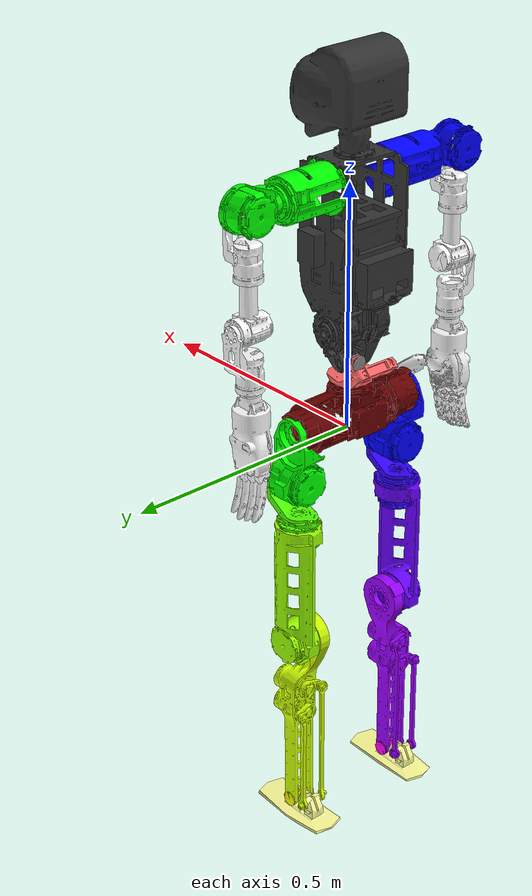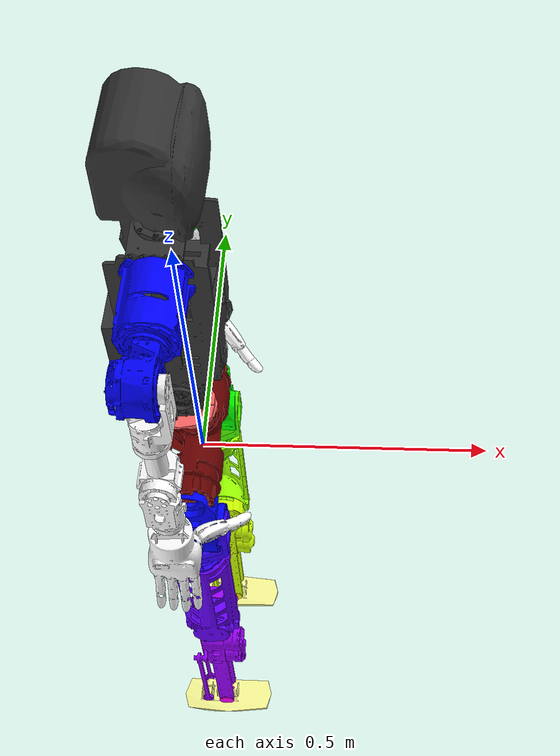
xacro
<?xml version="1.0"?>
<robot xmlns:xacro="http://www.ros.org/wiki/xacro" name="mojia">
    <xacro:arg name="initial_positions_file" default="initial_positions.yaml" />

    <!-- Import mojia urdf file -->
    <xacro:include filename="$(find x1_moveit_urdf)/urdf/mojia.urdf" />

    <!-- Import control_xacro -->
    <xacro:include filename="mojia.ros2_control.xacro" />

    <xacro:mojia_ros2_control name="FakeSystem" initial_positions_file="$(arg initial_positions_file)"/>

</robot>

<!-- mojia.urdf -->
<robot
  name="mojia">
  <!-- base_link -->
  <link
    name="base_link">
    <inertial>
      <origin
        xyz="-0.00411548224198929 0.000146147835290573 0.0426606792874893"
        rpy="0 0 0" />
      <mass
        value="1.10840556681425" />
      <inertia
        ixx="0.00441901229889038"
        ixy="-2.0392538906452E-06"
        ixz="-2.74478451994127E-05"
        iyy="0.00141431871882606"
        iyz="-1.41940549816939E-06"
        izz="0.00368200186094865" />
    </inertial>
    <visual>
      <origin
        xyz="0 0 0"
        rpy="0 0 0" />
      <geometry>
        <mesh
          filename="package://x1_moveit_urdf/meshes2/base_link_simple.STL" />
      </geometry>
      <material name="base_link_material">
        <color rgba="0.4 0 0 1" />
      </material>
    </visual>
    <collision>
      <origin
        xyz="0 0 0"
        rpy="0 0 0" />
      <geometry>
        <mesh
          filename="package://x1_moveit_urdf/meshes2/base_link_simple.STL" />
      </geometry>
    </collision>
  </link>
    <!-- lumbar_yaw -->
  <link
    name="lumbar_yaw">
    <inertial>
      <origin
        xyz="0.0242847587919135 0.000379949106794244 -0.0333488125835713"
        rpy="0 0 0" />
      <mass
        value="0.285605061772906" />
      <inertia
        ixx="0.000292548153065141"
        ixy="3.75674006613175E-07"
        ixz="4.24435646495604E-05"
        iyy="0.000267304646340175"
        iyz="6.64362629008402E-07"
        izz="0.000485961878526842" />
    </inertial>
    <visual>
      <origin
        xyz="0 0 0"
        rpy="0 0 0" />
      <geometry>
        <mesh
          filename="package://x1_moveit_urdf/meshes2/lumbar_yaw_simple.STL" />
      </geometry>
      <material name="lumbar_yaw_material">
        <color rgba="1 0.4 0.4 1" />
      </material>
    </visual>
    <collision>
      <origin
        xyz="0 0 0"
        rpy="0 0 0" />
      <geometry>
        <mesh
          filename="package://x1_moveit_urdf/meshes2/lumbar_yaw_simple.STL" />
      </geometry>
    </collision>
  </link>
  <!-- lumbar_yaw_joint -->
  <joint
    name="lumbar_yaw_joint"
    type="fixed">
    <origin
      xyz="-0.00892499999999956 0 0.0945"
      rpy="3.14159265358979 0 -3.14159265358978" />
    <parent
      link="base_link" />
    <child
      link="lumbar_yaw" />
    <axis
      xyz="0 0 -1" />
    <limit
      lower="-3.14"
      upper="3.14"
      effort="80"
      velocity="8" />
  </joint>
  <!-- lumbar_roll -->
  <link
    name="lumbar_roll">
    <inertial>
      <origin
        xyz="1.0432775894919E-14 5.07141613037554E-07 1.14154701148485E-13"
        rpy="0 0 0" />
      <mass
        value="0.0849490652980181" />
      <inertia
        ixx="6.8736749754492E-06"
        ixy="1.23726626464703E-20"
        ixz="-5.60189897559463E-08"
        iyy="1.42989849183807E-05"
        iyz="-2.32048040088288E-21"
        izz="1.045284785918E-05" />
    </inertial>
    <visual>
      <origin
        xyz="0 0 0"
        rpy="0 0 0" />
      <geometry>
        <mesh
          filename="package://x1_moveit_urdf/meshes2/lumbar_roll_simple.STL" />
      </geometry>
      <material
        name="lumbar_roll_material" >
        <color
          rgba="0.5 0.5 0.5 1.0" />
      </material>
    </visual>
    <collision>
      <origin
        xyz="0 0 0"
        rpy="0 0 0" />
      <geometry>
        <mesh
          filename="package://x1_moveit_urdf/meshes2/lumbar_roll_simple.STL" />
      </geometry>
    </collision>
  </link>
  <!-- lumbar_roll_joint -->
  <joint
    name="lumbar_roll_joint"
    type="fixed">
    <origin
      xyz="0 0 -0.0522"
      rpy="-1.5707963267949 0 1.57079632679492" />
    <parent
      link="lumbar_yaw" />
    <child
      link="lumbar_roll" />
    <axis
      xyz="0 0 -1" />
    <limit
      lower="-0.3"
      upper="0.3"
      effort="100"
      velocity="8" />
  </joint>
  <!-- lumbar_pitch -->
  <link
    name="lumbar_pitch">
    <inertial>
      <origin
        xyz="0.00631921618230846 0.264879323783239 0.00438445218382418"
        rpy="0 0 0" />
      <mass
        value="5.86662042170012" />
      <inertia
        ixx="0.0151704590846097"
        ixy="-0.000161997288556364"
        ixz="-2.32038766630112E-06"
        iyy="0.0137892848345163"
        iyz="1.11852172902789E-06"
        izz="0.0171651320818005" />
    </inertial>
    <visual>
      <origin
        xyz="0 0 0"
        rpy="0 0 0" />
      <geometry>
        <mesh
          filename="package://x1_moveit_urdf/meshes2/lumbar_pitch_simple.STL" />
      </geometry>
      <material
        name="lumbar_pitch_material">
        <color
          rgba="0.2 0.2 0.2 1" />
      </material>
    </visual>
    <collision>
      <origin
        xyz="0 0 0"
        rpy="0 0 0" />
      <geometry>
        <mesh
          filename="package://x1_moveit_urdf/meshes2/lumbar_pitch_simple.STL" />
      </geometry>
    </collision>
  </link>
  <!-- lumbar_pitch_joint -->
  <joint
    name="lumbar_pitch_joint"
    type="fixed">
    <origin
      xyz="0 0 0"
      rpy="0 1.55515005729251 0" />
    <parent
      link="lumbar_roll" />
    <child
      link="lumbar_pitch" />
    <axis
      xyz="0 0 1" />
    <limit
      lower="-0.3"
      upper="0.3"
      effort="100"
      velocity="8" />
  </joint>
    <!-- left_shoulder_pitch -->
  <link
    name="left_shoulder_pitch">
    <inertial>
      <origin
        xyz="-0.00332649335251115 -0.00110354880310753 0.0290235767327294"
        rpy="0 0 0" />
      <mass
        value="0.542699404176845" />
      <inertia
        ixx="0.000722529170897043"
        ixy="-5.54896068666339E-07"
        ixz="-1.91191464876378E-05"
        iyy="0.00101667275817213"
        iyz="-1.49494605897863E-05"
        izz="0.000552736902750732" />
    </inertial>
    <visual>
      <origin
        xyz="0 0 0"
        rpy="0 0 0" />
      <geometry>
        <mesh
          filename="package://x1_moveit_urdf/meshes2/left_shoulder_pitch_simple.STL" />
      </geometry>
      <material
        name="left_shoulder_pitch_material">
        <color
          rgba="0 1 0 1" />
      </material>
    </visual>
    <collision>
      <origin
        xyz="0 0 0"
        rpy="0 0 0" />
      <geometry>
        <mesh
          filename="package://x1_moveit_urdf/meshes2/left_shoulder_pitch_simple.STL" />
      </geometry>
    </collision>
  </link>
  <!-- left_shoulder_pitch_joint -->
  <joint
    name="left_shoulder_pitch_joint"
    type="revolute">
    <origin
      xyz="0.00684066494661035 0.365998640806869 0.181174671123289"
      rpy="3.14159265358979 0.031292539004771 0" />
    <parent
      link="lumbar_pitch" />
    <child
      link="left_shoulder_pitch" />
    <axis
      xyz="0 0 -1" />
    <limit
      lower="-3.14"
      upper="3.14"
      effort="80"
      velocity="8" />
  </joint>
  <!-- left_shoulder_roll -->
  <link
    name="left_shoulder_roll">
    <inertial>
      <origin
        xyz="-8.25364178028698E-05 0.0530767872535207 0.00723170713850169"
        rpy="0 0 0" />
      <mass
        value="0.177262967285343" />
      <inertia
        ixx="0.000150561257813197"
        ixy="-1.57480740107331E-07"
        ixz="-5.3233372935276E-07"
        iyy="6.49151390070414E-05"
        iyz="1.54045787231362E-05"
        izz="0.000184234580216881" />
    </inertial>
    <visual>
      <origin
        xyz="0 0 0"
        rpy="0 0 0" />
      <geometry>
        <mesh
          filename="package://x1_moveit_urdf/meshes2/left_shoulder_roll_simple.STL" />
      </geometry>
      <material
        name="">
        <color
          rgba="1 1 1 1" />
      </material>
    </visual>
    <collision>
      <origin
        xyz="0 0 0"
        rpy="0 0 0" />
      <geometry>
        <mesh
          filename="package://x1_moveit_urdf/meshes2/left_shoulder_roll_simple.STL" />
      </geometry>
    </collision>
  </link>
  <!-- left_shoulder_roll_joint -->
  <joint
    name="left_shoulder_roll_joint"
    type="revolute">
    <origin
      xyz="-0.0169999133123217 -5.42897189597658E-05 -0.0733999999999981"
      rpy="0 -1.55515005729249 0" />
    <parent
      link="left_shoulder_pitch" />
    <child
      link="left_shoulder_roll" />
    <axis
      xyz="0 0 -1" />
    <limit
      lower="-3.14"
      upper="0"
      effort="80"
      velocity="8" />
  </joint>
  <!-- left_shoulder_yaw -->
  <link
    name="left_shoulder_yaw">
    <inertial>
      <origin
        xyz="0.000149139608111414 -0.00264803136489561 -0.0651418602655361"
        rpy="0 0 0" />
      <mass
        value="0.194803017588638" />
      <inertia
        ixx="0.000135198542790347"
        ixy="-6.61852095338855E-08"
        ixz="5.10717801509479E-07"
        iyy="0.000166335353414696"
        iyz="6.51047641164555E-06"
        izz="6.6471862655499E-05" />
    </inertial>
    <visual>
      <origin
        xyz="0 0 0"
        rpy="0 0 0" />
      <geometry>
        <mesh
          filename="package://x1_moveit_urdf/meshes2/left_shoulder_yaw_simple.STL" />
      </geometry>
      <material
        name="">
        <color
          rgba="1 1 1 1" />
      </material>
    </visual>
    <collision>
      <origin
        xyz="0 0 0"
        rpy="0 0 0" />
      <geometry>
        <mesh
          filename="package://x1_moveit_urdf/meshes2/left_shoulder_yaw_simple.STL" />
      </geometry>
    </collision>
  </link>
  <!-- left_shoulder_yaw_joint -->
  <joint
    name="left_shoulder_yaw_joint"
    type="revolute">
    <origin
      xyz="0.000579714734117776 0.125254090204787 -0.0166930578416904"
      rpy="1.82673878068826 1.5582045043871 0.256324151940751" />
    <parent
      link="left_shoulder_roll" />
    <child
      link="left_shoulder_yaw" />
    <axis
      xyz="0 0 1" />
    <limit
      lower="-3.14"
      upper="3.14"
      effort="80"
      velocity="8" />
  </joint>
  <!-- left_elbow_pitch -->
  <link
    name="left_elbow_pitch">
    <inertial>
      <origin
        xyz="-0.000273876102835502 0.0583033973975012 0.00453621119175379"
        rpy="0 0 0" />
      <mass
        value="0.143808611229734" />
      <inertia
        ixx="0.000122979516243816"
        ixy="-1.55890139227625E-06"
        ixz="-5.36818906720583E-07"
        iyy="5.35513055114415E-05"
        iyz="-1.70454399759809E-05"
        izz="0.000140691828936738" />
    </inertial>
    <visual>
      <origin
        xyz="0 0 0"
        rpy="0 0 0" />
      <geometry>
        <mesh
          filename="package://x1_moveit_urdf/meshes2/left_elbow_pitch_simple.STL" />
      </geometry>
      <material
        name="">
        <color
          rgba="1 1 1 1" />
      </material>
    </visual>
    <collision>
      <origin
        xyz="0 0 0"
        rpy="0 0 0" />
      <geometry>
        <mesh
          filename="package://x1_moveit_urdf/meshes2/left_elbow_pitch_simple.STL" />
      </geometry>
    </collision>
  </link>
  <!-- left_elbow_pitch_joint -->
  <joint
    name="left_elbow_pitch_joint"
    type="revolute">
    <origin
      xyz="0.00163986046518474 -0.0313569443085182 -0.096499999999999"
      rpy="-1.5707963267949 -0.00319351850506053 0.00346578280149134" />
    <parent
      link="left_shoulder_yaw" />
    <child
      link="left_elbow_pitch" />
    <axis
      xyz="0 0 1" />
    <limit
      lower="0"
      upper="1.7"
      effort="80"
      velocity="8" />
  </joint>
  <!-- left_elbow_yaw -->
  <link
    name="left_elbow_yaw">
    <inertial>
      <origin
        xyz="0.000199094560296431 -0.000302870223542744 -0.0136355891234377"
        rpy="0 0 0" />
      <mass
        value="0.0612077984858201" />
      <inertia
        ixx="1.05700158378458E-05"
        ixy="-1.4621144225104E-07"
        ixz="-1.50686031125134E-11"
        iyy="8.35342507539468E-06"
        iyz="-2.09223764956818E-11"
        izz="1.19406807189465E-05" />
    </inertial>
    <visual>
      <origin
        xyz="0 0 0"
        rpy="0 0 0" />
      <geometry>
        <mesh
          filename="package://x1_moveit_urdf/meshes2/left_elbow_yaw_simple.STL" />
      </geometry>
      <material
        name="">
        <color
          rgba="1 1 1 1" />
      </material>
    </visual>
    <collision>
      <origin
        xyz="0 0 0"
        rpy="0 0 0" />
      <geometry>
        <mesh
          filename="package://x1_moveit_urdf/meshes2/left_elbow_yaw_simple.STL" />
      </geometry>
    </collision>
  </link>
  <!-- left_elbow_yaw_joint -->
  <joint
    name="left_elbow_yaw_joint"
    type="revolute">
    <origin
      xyz="0.0007880461527357 0.116972521845495 0.0308056475131634"
      rpy="1.57079632678494 -1.55514499556442 -0.022438290275157" />
    <parent
      link="left_elbow_pitch" />
    <child
      link="left_elbow_yaw" />
    <axis
      xyz="0 0 1" />
    <limit
      lower="-3.14"
      upper="3.14"
      effort="80"
      velocity="8" />
  </joint>
    <!-- right_shoulder_pitch -->
  <link
    name="right_shoulder_pitch">
    <inertial>
      <origin
        xyz="0.00341359621287992 -0.000986341160443271 0.0291359382301364"
        rpy="0 0 0" />
      <mass
        value="0.541164807985143" />
      <inertia
        ixx="0.000722519077405953"
        ixy="1.32379537779855E-06"
        ixz="1.91138067798437E-05"
        iyy="0.00101665284015591"
        iyz="-1.68000287858978E-05"
        izz="0.000552732129965598" />
    </inertial>
    <visual>
      <origin
        xyz="0 0 0"
        rpy="0 0 0" />
      <geometry>
        <mesh
          filename="package://x1_moveit_urdf/meshes2/right_shoulder_pitch_simple.STL" />
      </geometry>
      <material
        name="right_shoulder_pitch_material">
        <color
          rgba="0 0 1 1" />
      </material>
    </visual>
    <collision>
      <origin
        xyz="0 0 0"
        rpy="0 0 0" />
      <geometry>
        <mesh
          filename="package://x1_moveit_urdf/meshes2/right_shoulder_pitch_simple.STL" />
      </geometry>
    </collision>
  </link>
  <!-- right_shoulder_pitch_joint -->
  <joint
    name="right_shoulder_pitch_joint"
    type="revolute">
    <origin
      xyz="0.00116882571392232 0.365998640806869 -0.181299999999985"
      rpy="0 0 3.14159265358979" />
    <parent
      link="lumbar_pitch" />
    <child
      link="right_shoulder_pitch" />
    <axis
      xyz="0 0 1" />
    <limit
      lower="-3.14"
      upper="3.14"
      effort="80"
      velocity="8" />
  </joint>
  <!-- right_shoulder_roll -->
  <link
    name="right_shoulder_roll">
    <inertial>
      <origin
        xyz="-1.86494505473034E-05 -0.0530995950476543 0.00706257503619361"
        rpy="0 0 0" />
      <mass
        value="0.177262967616402" />
      <inertia
        ixx="0.000150552920976246"
        ixy="2.34557176353238E-08"
        ixz="-5.52349341421497E-09"
        iyy="6.5014673405522E-05"
        iyz="-1.57859159242346E-05"
        izz="0.000184143383830389" />
    </inertial>
    <visual>
      <origin
        xyz="0 0 0"
        rpy="0 0 0" />
      <geometry>
        <mesh
          filename="package://x1_moveit_urdf/meshes2/right_shoulder_roll_simple.STL" />
      </geometry>
      <material
        name="">
        <color
          rgba="1 1 1 1" />
      </material>
    </visual>
    <collision>
      <origin
        xyz="0 0 0"
        rpy="0 0 0" />
      <geometry>
        <mesh
          filename="package://x1_moveit_urdf/meshes2/right_shoulder_roll_simple.STL" />
      </geometry>
    </collision>
  </link>
  <!-- right_shoulder_roll_joint -->
  <joint
    name="right_shoulder_roll_joint"
    type="revolute">
    <origin
      xyz="0.0169999133123207 -5.42897189588776E-05 -0.0733999999999984"
      rpy="-0.234226861435469 -1.57079630572147 -2.91064514152232" />
    <parent
      link="right_shoulder_pitch" />
    <child
      link="right_shoulder_roll" />
    <axis
      xyz="0 0 1" />
    <limit
      lower="-3.14"
      upper="0"
      effort="80"
      velocity="8" />
  </joint>
  <!-- right_shoulder_yaw -->
  <link
    name="right_shoulder_yaw">
    <inertial>
      <origin
        xyz="-0.00174842851611806 0.000333054815321896 0.0651418600731424"
        rpy="0 0 0" />
      <mass
        value="0.19480301770664" />
      <inertia
        ixx="0.000165972455416268"
        ixy="-3.34246474543428E-06"
        ixz="-6.92073368503519E-06"
        iyy="0.000135561436521552"
        iyz="2.24532271362631E-07"
        izz="6.64718608216598E-05" />
    </inertial>
    <visual>
      <origin
        xyz="0 0 0"
        rpy="0 0 0" />
      <geometry>
        <mesh
          filename="package://x1_moveit_urdf/meshes2/right_shoulder_yaw_simple.STL" />
      </geometry>
      <material
        name="">
        <color
          rgba="1 1 1 1" />
      </material>
    </visual>
    <collision>
      <origin
        xyz="0 0 0"
        rpy="0 0 0" />
      <geometry>
        <mesh
          filename="package://x1_moveit_urdf/meshes2/right_shoulder_yaw_simple.STL" />
      </geometry>
    </collision>
  </link>
  <!-- right_shoulder_yaw_joint -->
  <joint
    name="right_shoulder_yaw_joint"
    type="revolute">
    <origin
      xyz="-4.39689994110593E-05 -0.125199992279295 -0.0170999999999989"
      rpy="1.5707963267949 -0.109529170147002 -0.000351190097847177" />
    <parent
      link="right_shoulder_roll" />
    <child
      link="right_shoulder_yaw" />
    <axis
      xyz="0 0 1" />
    <limit
      lower="-3.14"
      upper="3.14"
      effort="80"
      velocity="8" />
  </joint>
  <!-- right_elbow_pitch -->
  <link
    name="right_elbow_pitch">
    <inertial>
      <origin
        xyz="0.00130853072632608 -0.0583071351001719 0.00456877405751716"
        rpy="0 0 0" />
      <mass
        value="0.143808617756103" />
      <inertia
        ixx="0.000122979526170695"
        ixy="1.55889015489514E-06"
        ixz="-5.3677454927956E-07"
        iyy="5.35513063953965E-05"
        iyz="1.70454411337504E-05"
        izz="0.000140691839527152" />
    </inertial>
    <visual>
      <origin
        xyz="0 0 0"
        rpy="0 0 0" />
      <geometry>
        <mesh
          filename="package://x1_moveit_urdf/meshes2/right_elbow_pitch_simple.STL" />
      </geometry>
      <material
        name="">
        <color
          rgba="1 1 1 1" />
      </material>
    </visual>
    <collision>
      <origin
        xyz="0 0 0"
        rpy="0 0 0" />
      <geometry>
        <mesh
          filename="package://x1_moveit_urdf/meshes2/right_elbow_pitch_simple.STL" />
      </geometry>
    </collision>
  </link>
  <!-- right_elbow_pitch_joint -->
  <joint
    name="right_elbow_pitch_joint"
    type="revolute">
    <origin
      xyz="-0.0308142379152539 0.00338861943897752 0.0964999999999989"
      rpy="-1.5707963267949 0.00319351850506053 -1.68032549694189" />
    <parent
      link="right_shoulder_yaw" />
    <child
      link="right_elbow_pitch" />
    <axis
      xyz="0 0 -1" />
    <limit
      lower="0"
      upper="1.7"
      effort="80"
      velocity="8" />
  </joint>
  <!-- right_elbow_yaw -->
  <link
    name="right_elbow_yaw">
    <inertial>
      <origin
        xyz="-1.92816910771221E-08 -1.64460819754297E-08 -0.013635590017065"
        rpy="0 0 0" />
      <mass
        value="0.0612078028237884" />
      <inertia
        ixx="1.05700177312347E-05"
        ixy="1.46204619903361E-07"
        ixz="-1.27083552627504E-11"
        iyy="8.35342478537872E-06"
        iyz="-1.53169897306542E-11"
        izz="1.19406809591988E-05" />
    </inertial>
    <visual>
      <origin
        xyz="0 0 0"
        rpy="0 0 0" />
      <geometry>
        <mesh
          filename="package://x1_moveit_urdf/meshes2/right_elbow_yaw_simple.STL" />
      </geometry>
      <material
        name="">
        <color
          rgba="1 1 1 1" />
      </material>
    </visual>
    <collision>
      <origin
        xyz="0 0 0"
        rpy="0 0 0" />
      <geometry>
        <mesh
          filename="package://x1_moveit_urdf/meshes2/right_elbow_yaw_simple.STL" />
      </geometry>
    </collision>
  </link>
  <!-- right_elbow_yaw_joint -->
  <joint
    name="right_elbow_yaw_joint"
    type="revolute">
    <origin
      xyz="0.00262505967428117 -0.116970547838755 0.0310000000000156"
      rpy="-1.57079632678494 -1.55514499556442 0.0224382902751568" />
    <parent
      link="right_elbow_pitch" />
    <child
      link="right_elbow_yaw" />
    <axis
      xyz="0 0 -1" />
    <limit
      lower="-3.14"
      upper="3.14"
      effort="80"
      velocity="8" />
  </joint>
  <!-- left_hip_pitch -->
  <link
    name="left_hip_pitch">
    <inertial>
      <origin
        xyz="-0.0768353855661542 -0.00509349646830231 0.00477908123851142"
        rpy="0 0 0" />
      <mass
        value="0.499137053804163" />
      <inertia
        ixx="0.000470159834795421"
        ixy="-7.67218816291647E-07"
        ixz="6.34831225495408E-05"
        iyy="0.00075943013272318"
        iyz="1.50572596404635E-07"
        izz="0.000627349919131527" />
    </inertial>
    <visual>
      <origin
        xyz="0 0 0"
        rpy="0 0 0" />
      <geometry>
        <mesh
          filename="package://x1_moveit_urdf/meshes2/left_hip_pitch_simple.STL" />
      </geometry>
      <material
        name="left_hip_pitch_material">
        <color
          rgba="0 1 0 1" />
      </material>
    </visual>
    <collision>
      <origin
        xyz="0 0 0"
        rpy="0 0 0" />
      <geometry>
        <mesh
          filename="package://x1_moveit_urdf/meshes2/left_hip_pitch_simple.STL" />
      </geometry>
    </collision>
  </link>
  <!-- left_hip_pitch_joint -->
  <joint
    name="left_hip_pitch_joint"
    type="fixed">
    <origin
      xyz="-0.00892499999999997 0.1366 0.0370000000000009"
      rpy="1.5707963267949 -1.5707963267949 0" />
    <parent
      link="base_link" />
    <child
      link="left_hip_pitch" />
    <axis
      xyz="0 0 1" />
    <limit
      lower="-3.14"
      upper="3.14"
      effort="150"
      velocity="8" />
  </joint>
  <!-- left_hip_roll -->
  <link
    name="left_hip_roll">
    <inertial>
      <origin
        xyz="0.000302607426308971 -0.0611150281238166 -0.0135350215072093"
        rpy="0 0 0" />
      <mass
        value="0.244995882241488" />
      <inertia
        ixx="0.000288446946271372"
        ixy="-3.94306076373627E-10"
        ixz="-1.63239145296905E-07"
        iyy="0.000203132884371558"
        iyz="-8.13199094994196E-05"
        izz="0.000260839810139012" />
    </inertial>
    <visual>
      <origin
        xyz="0 0 0"
        rpy="0 0 0" />
      <geometry>
        <mesh
          filename="package://x1_moveit_urdf/meshes2/left_hip_roll_simple.STL" />
      </geometry>
      <material
        name="left_hip_roll_material">
        <color
          rgba="0.3 1 0 1" />
      </material>
    </visual>
    <collision>
      <origin
        xyz="0 0 0"
        rpy="0 0 0" />
      <geometry>
        <mesh
          filename="package://x1_moveit_urdf/meshes2/left_hip_roll_simple.STL" />
      </geometry>
    </collision>
  </link>
  <!-- left_hip_roll_joint -->
  <joint
    name="left_hip_roll_joint"
    type="fixed">
    <origin
      xyz="-0.106902043422618 -0.0376294513921441 0.00625000000000259"
      rpy="1.5707963267949 1.5707963267949 0" />
    <parent
      link="left_hip_pitch" />
    <child
      link="left_hip_roll" />
    <axis
      xyz="0 0 -1" />
    <limit
      lower="-2.3"
      upper="0.8"
      effort="150"
      velocity="8" />
  </joint>
  <!-- left_hip_yaw -->
  <link
    name="left_hip_yaw">
    <inertial>
      <origin
        xyz="0.00998955793786788 0.000163319481209022 0.125854635023332"
        rpy="0 0 0" />
      <mass
        value="0.650294976239883" />
      <inertia
        ixx="0.00451228884717276"
        ixy="-2.80689031477291E-08"
        ixz="0.000127212368924329"
        iyy="0.00387304139500323"
        iyz="-4.60618890673578E-09"
        izz="0.000888216455121223" />
    </inertial>
    <visual>
      <origin
        xyz="0 0 0"
        rpy="0 0 0" />
      <geometry>
        <mesh
          filename="package://x1_moveit_urdf/meshes2/left_hip_yaw_simple.STL" />
      </geometry>
      <material
        name="left_hip_yaw_material">
        <color
          rgba="0.6 1 0 1" />
      </material>
    </visual>
    <collision>
      <origin
        xyz="0 0 0"
        rpy="0 0 0" />
      <geometry>
        <mesh
          filename="package://x1_moveit_urdf/meshes2/left_hip_yaw_simple.STL" />
      </geometry>
    </collision>
  </link>
  <!-- left_hip_yaw_joint -->
  <joint
    name="left_hip_yaw_joint"
    type="fixed">
    <origin
      xyz="0 -0.130201409923332 -0.0367599239353459"
      rpy="1.56818343700026 0 0" />
    <parent
      link="left_hip_roll" />
    <child
      link="left_hip_yaw" />
    <axis
      xyz="0 0 -1" />
    <limit
      lower="-3.14"
      upper="3.14"
      effort="50"
      velocity="24" />
  </joint>
  <!-- left_knee_pitch -->
  <link
    name="left_knee_pitch">
    <inertial>
      <origin
        xyz="0.0114537842909162 -0.184145220288645 0.0234060443728987"
        rpy="0 0 0" />
      <mass
        value="1.05784720547283" />
      <inertia
        ixx="0.0113485834531835"
        ixy="4.115770741638E-05"
        ixz="7.86723536105806E-06"
        iyy="0.000518068119921075"
        iyz="0.000981300531059996"
        izz="0.0111404498442601" />
    </inertial>
    <visual>
      <origin
        xyz="0 0 0"
        rpy="0 0 0" />
      <geometry>
        <mesh
          filename="package://x1_moveit_urdf/meshes2/left_knee_pitch_simple.STL" />
      </geometry>
      <material
        name="left_knee_pitch_material">
        <color
          rgba="0.8 1 0 1" />
      </material>
    </visual>
    <collision>
      <origin
        xyz="0 0 0"
        rpy="0 0 0" />
      <geometry>
        <mesh
          filename="package://x1_moveit_urdf/meshes2/left_knee_pitch_simple.STL" />
      </geometry>
    </collision>
  </link>
  <!-- left_knee_pitch_joint -->
  <joint
    name="left_knee_pitch_joint"
    type="fixed">
    <origin
      xyz="-0.0301999999999961 0 0.225799999999773"
      rpy="-1.5707963267949 0.00261288979463162 -1.57079632679624" />
    <parent
      link="left_hip_yaw" />
    <child
      link="left_knee_pitch" />
    <axis
      xyz="0 0 1" />
    <limit
      lower="0.0"
      upper="1.8"
      effort="150"
      velocity="8" />
  </joint>
  <!-- left_ankle_pitch -->
  <link
    name="left_ankle_pitch">
    <inertial>
      <origin
        xyz="-8.84427080183325E-15 9.32587340685131E-15 -7.41073868937292E-15"
        rpy="0 0 0" />
      <mass
        value="0.0849490652980182" />
      <inertia
        ixx="9.9634051635566E-06"
        ixy="-5.80894148829404E-08"
        ixz="-1.45166121763947E-21"
        iyy="1.42982066187501E-05"
        iyz="-4.17714819225745E-21"
        izz="7.36389597070316E-06" />
    </inertial>
    <visual>
      <origin
        xyz="0 0 0"
        rpy="0 0 0" />
      <geometry>
        <mesh
          filename="package://x1_moveit_urdf/meshes2/left_ankle_pitch_simple.STL" />
      </geometry>
      <material
        name="left_ankle_pitch_material">
        <color
          rgba="1 1 0 1" />
      </material>
    </visual>
    <collision>
      <origin
        xyz="0 0 0"
        rpy="0 0 0" />
      <geometry>
        <mesh
          filename="package://x1_moveit_urdf/meshes2/left_ankle_pitch_simple.STL" />
      </geometry>
    </collision>
  </link>
  <!-- left_ankle_pitch_joint -->
  <joint
    name="left_ankle_pitch_joint"
    type="fixed">
    <origin
      xyz="0 -0.385000000000005 0.0300999999999915"
      rpy="3.14159265358979 0 -3.14159265358979" />
    <parent
      link="left_knee_pitch" />
    <child
      link="left_ankle_pitch" />
    <axis
      xyz="0 0 -1" />
    <limit
      lower="-0.45"
      upper="0.53"
      effort="80"
      velocity="10" />
  </joint>
  <!-- left_ankle_roll -->
  <link
    name="left_ankle_roll">
    <inertial>
      <origin
        xyz="0.00103384742139478 -0.0243320483988078 -0.00578115568426951"
        rpy="0 0 0" />
      <mass
        value="0.320872234018552" />
      <inertia
        ixx="0.00059815844106272"
        ixy="-6.17694002252597E-07"
        ixz="-3.42614597752537E-07"
        iyy="0.000659551190538004"
        iyz="-0.000109468786305328"
        izz="0.000136929660183721" />
    </inertial>
    <visual>
      <origin
        xyz="0 0 0"
        rpy="0 0 0" />
      <geometry>
        <mesh
          filename="package://x1_moveit_urdf/meshes2/left_ankle_roll_simple.STL" />
      </geometry>
      <material
        name="left_ankle_roll_material">
        <color
          rgba="1 1 0.6 1" />
      </material>
    </visual>
    <collision>
      <origin
        xyz="0 0 0"
        rpy="0 0 0" />
      <geometry>
        <mesh
          filename="package://x1_moveit_urdf/meshes2/left_ankle_roll_simple.STL" />
      </geometry>
    </collision>
  </link>
  <!-- left_ankle_roll_joint -->
  <joint
    name="left_ankle_roll_joint"
    type="fixed">
    <origin
      xyz="0 0 0"
      rpy="0.186565506447449 1.5707963267949 0" />
    <parent
      link="left_ankle_pitch" />
    <child
      link="left_ankle_roll" />
    <axis
      xyz="0 0 1" />
    <limit
      lower="-0.35"
      upper="0.35"
      effort="80"
      velocity="10" />
  </joint>
  <!-- right_hip_pitch -->
  <link
    name="right_hip_pitch">
    <inertial>
      <origin
        xyz="0.0768366458793737 0.00507070394553279 -0.00402980267174513"
        rpy="0 0 0" />
      <mass
        value="0.499137066244464" />
      <inertia
        ixx="0.00047013850002577"
        ixy="-7.56987007842232E-07"
        ixz="6.34716406414524E-05"
        iyy="0.000759430235919837"
        iyz="1.60339075938364E-07"
        izz="0.000627371250338339" />
    </inertial>
    <visual>
      <origin
        xyz="0 0 0"
        rpy="0 0 0" />
      <geometry>
        <mesh
          filename="package://x1_moveit_urdf/meshes2/right_hip_pitch_simple.STL" />
      </geometry>
      <material
        name="right_hip_pitch_material">
        <color
          rgba="0 0 1 1" />
      </material>
    </visual>
    <collision>
      <origin
        xyz="0 0 0"
        rpy="0 0 0" />
      <geometry>
        <mesh
          filename="package://x1_moveit_urdf/meshes2/right_hip_pitch_simple.STL" />
      </geometry>
    </collision>
  </link>
  <!-- right_hip_pitch_joint -->
  <joint
    name="right_hip_pitch_joint"
    type="fixed">
    <origin
      xyz="-0.00892499999999973 -0.13585 0.0369999999999999"
      rpy="1.5707963267949 1.5707963267949 0" />
    <parent
      link="base_link" />
    <child
      link="right_hip_pitch" />
    <axis
      xyz="0 0 -1" />
    <limit
      lower="-3.14"
      upper="3.14"
      effort="150"
      velocity="8" />
  </joint>
  <!-- right_hip_roll -->
  <link
    name="right_hip_roll">
    <inertial>
      <origin
        xyz="0.000302609741209936 -0.0481256896162707 0.0135689612944725"
        rpy="0 0 0" />
      <mass
        value="0.244995882241488" />
      <inertia
        ixx="0.000288446946271372"
        ixy="-4.58668568466603E-10"
        ixz="1.63208876158808E-07"
        iyy="0.000203132884444001"
        iyz="8.13198956366528E-05"
        izz="0.000260839810066567" />
    </inertial>
    <visual>
      <origin
        xyz="0 0 0"
        rpy="0 0 0" />
      <geometry>
        <mesh
          filename="package://x1_moveit_urdf/meshes2/right_hip_roll_simple.STL" />
      </geometry>
      <material
        name="right_hip_roll_material">
        <color
          rgba="0.2 0 1 1" />
      </material>
    </visual>
    <collision>
      <origin
        xyz="0 0 0"
        rpy="0 0 0" />
      <geometry>
        <mesh
          filename="package://x1_moveit_urdf/meshes2/right_hip_roll_simple.STL" />
      </geometry>
    </collision>
  </link>
  <!-- right_hip_roll_joint -->
  <joint
    name="right_hip_roll_joint"
    type="fixed">
    <origin
      xyz="0.106902043422617 0.0376294513921436 -0.00550000000000225"
      rpy="1.5707963267949 -1.5707963267949 0" />
    <parent
      link="right_hip_pitch" />
    <child
      link="right_hip_roll" />
    <axis
      xyz="0 0 1" />
    <limit
      lower="-0.8"
      upper="2.3"
      effort="150"
      velocity="8" />
  </joint>
  <!-- right_hip_yaw -->
  <link
    name="right_hip_yaw">
    <inertial>
      <origin
        xyz="0.00997976758109967 0.000164622694333141 -0.128953309088852"
        rpy="0 0 0" />
      <mass
        value="0.650294990438815" />
      <inertia
        ixx="0.00451228884076351"
        ixy="-7.78594513952418E-08"
        ixz="-0.000127213484001969"
        iyy="0.00387302734368796"
        iyz="4.22793975972583E-07"
        izz="0.000888230509769963" />
    </inertial>
    <visual>
      <origin
        xyz="0 0 0"
        rpy="0 0 0" />
      <geometry>
        <mesh
          filename="package://x1_moveit_urdf/meshes2/right_hip_yaw_simple.STL" />
      </geometry>
      <material
        name="right_hip_yaw_material">
        <color
          rgba="0.4 0 1 1" />
      </material>
    </visual>
    <collision>
      <origin
        xyz="0 0 0"
        rpy="0 0 0" />
      <geometry>
        <mesh
          filename="package://x1_moveit_urdf/meshes2/right_hip_yaw_simple.STL" />
      </geometry>
    </collision>
  </link>
  <!-- right_hip_yaw_joint -->
  <joint
    name="right_hip_yaw_joint"
    type="fixed">
    <origin
      xyz="0 -0.127101420505254 0.0367680238844933"
      rpy="-1.56818343700027 0 0" />
    <parent
      link="right_hip_roll" />
    <child
      link="right_hip_yaw" />
    <axis
      xyz="0 0 1" />
    <limit
      lower="-3.14"
      upper="3.14"
      effort="50"
      velocity="24" />
  </joint>
  <!-- right_knee_pitch -->
  <link
    name="right_knee_pitch">
    <inertial>
      <origin
        xyz="-0.0124372999743814 -0.180980729647601 0.0232971916031315"
        rpy="0 0 0" />
      <mass
        value="1.04073030200212" />
      <inertia
        ixx="0.0113468217525957"
        ixy="4.36819133877329E-05"
        ixz="7.86572143299153E-06"
        iyy="0.000516306532946036"
        iyz="0.000981314366555794"
        izz="0.0111403363346532" />
    </inertial>
    <visual>
      <origin
        xyz="0 0 0"
        rpy="0 0 0" />
      <geometry>
        <mesh
          filename="package://x1_moveit_urdf/meshes2/right_knee_pitch_simple.STL" />
      </geometry>
      <material
        name="right_knee_pitch_material">
        <color
          rgba="0.6 0 1 1" />
      </material>
    </visual>
    <collision>
      <origin
        xyz="0 0 0"
        rpy="0 0 0" />
      <geometry>
        <mesh
          filename="package://x1_moveit_urdf/meshes2/right_knee_pitch_simple.STL" />
      </geometry>
    </collision>
  </link>
  <!-- right_knee_pitch_joint -->
  <joint
    name="right_knee_pitch_joint"
    type="fixed">
    <origin
      xyz="-0.0301999999999978 0 -0.228899999999995"
      rpy="1.57079632679489 0.00261288979462868 1.57079632679603" />
    <parent
      link="right_hip_yaw" />
    <child
      link="right_knee_pitch" />
    <axis
      xyz="0 0 -1" />
    <limit
      lower="0.0"
      upper="1.8"
      effort="150"
      velocity="8" />
  </joint>
  <!-- right_ankle_pitch -->
  <link
    name="right_ankle_pitch">
    <inertial>
      <origin
        xyz="-2.46764414457701E-14 -1.0769163338864E-14 -3.0891955660195E-14"
        rpy="0 0 0" />
      <mass
        value="0.0849490652980182" />
      <inertia
        ixx="9.9634051635566E-06"
        ixy="5.80894148829403E-08"
        ixz="-1.75930107244605E-21"
        iyy="1.42982066187501E-05"
        iyz="3.87572618478114E-21"
        izz="7.36389597070316E-06" />
    </inertial>
    <visual>
      <origin
        xyz="0 0 0"
        rpy="0 0 0" />
      <geometry>
        <mesh
          filename="package://x1_moveit_urdf/meshes2/right_ankle_pitch_simple.STL" />
      </geometry>
      <material
        name="right_ankle_pitch_material">
        <color
          rgba="1 0 1 1" />
      </material>
    </visual>
    <collision>
      <origin
        xyz="0 0 0"
        rpy="0 0 0" />
      <geometry>
        <mesh
          filename="package://x1_moveit_urdf/meshes2/right_ankle_pitch_simple.STL" />
      </geometry>
    </collision>
  </link>
  <!-- right_ankle_pitch_joint -->
  <joint
    name="right_ankle_pitch_joint"
    type="fixed">
    <origin
      xyz="0 -0.385000000000006 0.0300999999999655"
      rpy="-3.14159265358979 0 0" />
    <parent
      link="right_knee_pitch" />
    <child
      link="right_ankle_pitch" />
    <axis
      xyz="0 0 1" />
    <limit
      lower="-0.45"
      upper="0.53"
      effort="80"
      velocity="10" />
  </joint>
  <!-- right_ankle_roll -->
  <link
    name="right_ankle_roll">
    <inertial>
      <origin
        xyz="0.00103396574657999 0.0228374969778827 -0.0101940682091403"
        rpy="0 0 0" />
      <mass
        value="0.320872234079849" />
      <inertia
        ixx="0.000598158441322896"
        ixy="5.4344616755146E-07"
        ixz="-4.51714691178402E-07"
        iyy="0.00068147550403419"
        iyz="6.67996321576171E-06"
        izz="0.000115005348867487" />
    </inertial>
    <visual>
      <origin
        xyz="0 0 0"
        rpy="0 0 0" />
      <geometry>
        <mesh
          filename="package://x1_moveit_urdf/meshes2/right_ankle_roll_simple.STL" />
      </geometry>
      <material
        name="right_ankle_roll_material">
        <color
          rgba="1 1 0.6 1" />
      </material>
    </visual>
    <collision>
      <origin
        xyz="0 0 0"
        rpy="0 0 0" />
      <geometry>
        <mesh
          filename="package://x1_moveit_urdf/meshes2/right_ankle_roll_simple.STL" />
      </geometry>
    </collision>
  </link>
  <!-- right_ankle_roll_joint -->
  <joint
    name="right_ankle_roll_joint"
    type="fixed">
    <origin
      xyz="0 0 0"
      rpy="0 1.5707963267949 0" />
    <parent
      link="right_ankle_pitch" />
    <child
      link="right_ankle_roll" />
    <axis
      xyz="0 0.18548510052829 0.982647076768669" />
    <limit
      lower="-0.35"
      upper="0.35"
      effort="80"
      velocity="10" />
  </joint>
</robot>
